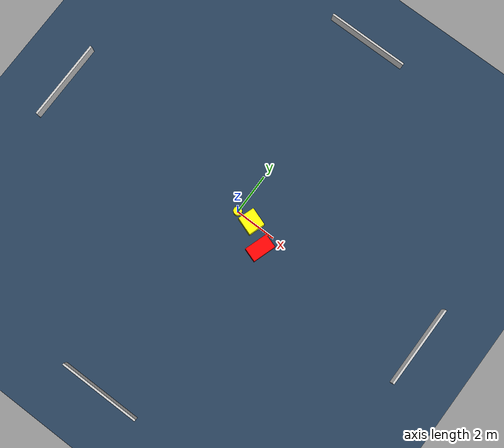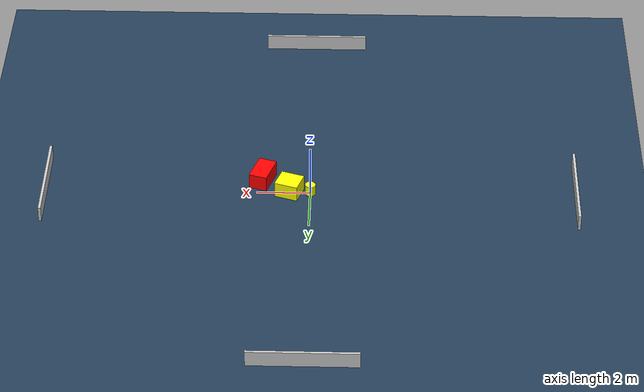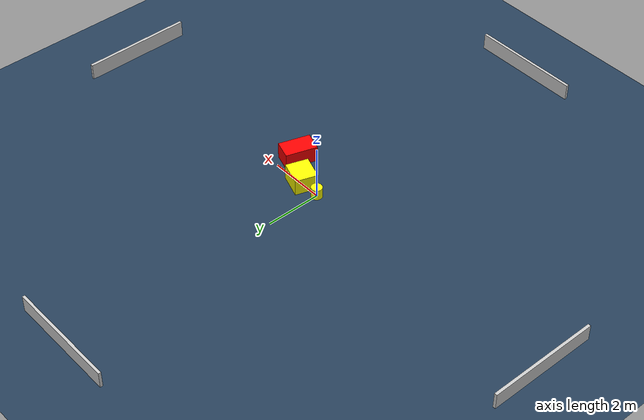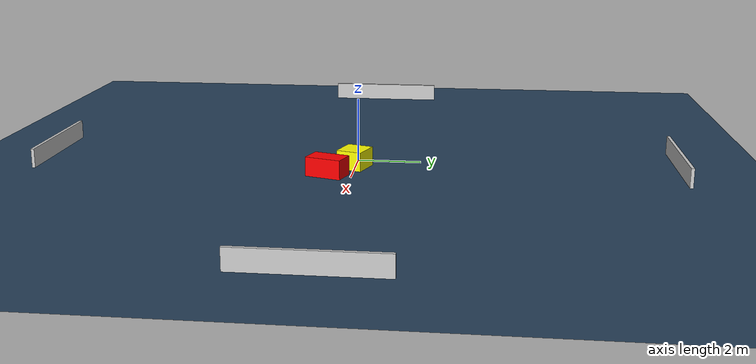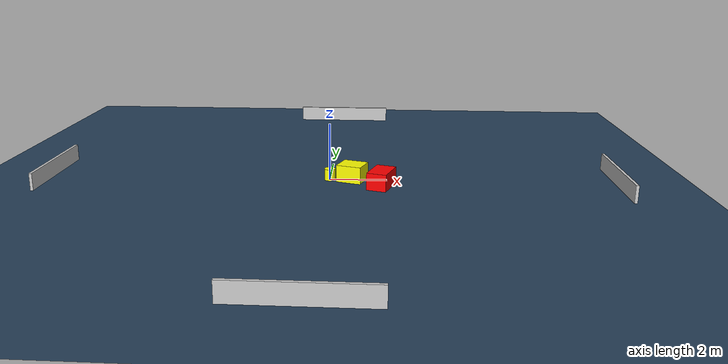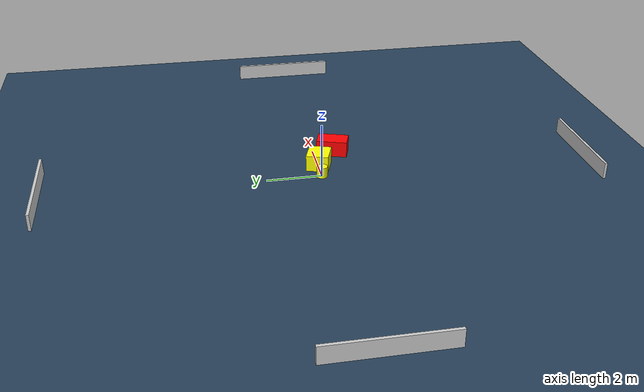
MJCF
<?xml version="1.0" ?>
<mujoco model="generated_environment">
  <option timestep="0.01" integrator="RK4" cone="elliptic"/>
  <default>
    <geom density="1"/>
  </default>
  <asset>
    <texture builtin="gradient" height="3072" name="skybox" rgb1="0.3 0.5 0.7" rgb2="0 0 0" type="skybox" width="512"/>
    <texture builtin="checker" height="300" name="groundplane" rgb1="0.2 0.3 0.4" rgb2="0.1 0.2 0.3" type="2d" width="300"/>
    <material name="groundplane" reflectance="0.2" texrepeat="5 5" texture="groundplane"/>
  </asset>
  <worldbody>
    <light dir="0 0 -1" directional="true" pos="0 0 1.5"/>
    <geom condim="3" friction="0.5 0.005 0.001" material="groundplane" name="floor" pos="0 0 0" size="0 0 0.05" type="plane"/>
    <body name="walls">
      <geom name="wall_1" condim="4" pos="-10.0 0.0 0.3" rgba="0.800000011920929 0.800000011920929 0.800000011920929 1.0" size="0.05 2.0 0.3" type="box"/>
      <geom name="wall_2" condim="4" pos="10.0 0.0 0.3" rgba="0.800000011920929 0.800000011920929 0.800000011920929 1.0" size="0.05 2.0 0.3" type="box"/>
      <geom name="wall_3" condim="4" pos="0.0 -10.0 0.3" rgba="0.800000011920929 0.800000011920929 0.800000011920929 1.0" size="2.0 0.05 0.3" type="box"/>
      <geom name="wall_4" condim="4" pos="0.0 10.0 0.3" rgba="0.800000011920929 0.800000011920929 0.800000011920929 1.0" size="2.0 0.05 0.3" type="box"/>
    </body>
    <body name="robot">
      <joint name="joint_x" type="slide" pos="0 0 0" axis="1 0 0"/>
      <joint name="joint_y" type="slide" pos="0 0 0" axis="0 1 0"/>
      <geom name="robot" type="cylinder" pos="0.0 0.0 0.2" size="0.2 0.2 0.0" mass="5.0" friction="1.0 0.005 0.0001" condim="4" rgba="1.0 1.0 0.0 1.0"/>
    </body>
    <body name="obstacle_1_movable">
      <geom name="obstacle_1_movable" condim="4" pos="0.7920239411158545 -0.02448022635323124 0.3" euler="0 0 251.1556159876207" friction="0.0 0.005 0.001" rgba="1.0 1.0 0.0 1.0" size="0.4083577125312576 0.4464050354724717 0.3" type="box" mass="0.1"/>
      <joint type="free"/>
    </body>
    <body name="obstacle_2_static">
      <geom name="obstacle_2_static" condim="4" pos="1.8197919352270049 -0.739530713813771 0.3" euler="0 0 251.9732259617534" friction="0.0 0.005 0.001" rgba="1.0 0.0 0.0 1.0" size="0.5732681897847942 0.34684228684684715 0.3" type="box"/>
    </body>
  </worldbody>
  <actuator>
    <motor name="actuator_x" joint="joint_x" gear="1" ctrlrange="-1 1"/>
    <motor name="actuator_y" joint="joint_y" gear="1" ctrlrange="-1 1"/>
  </actuator>
</mujoco>
